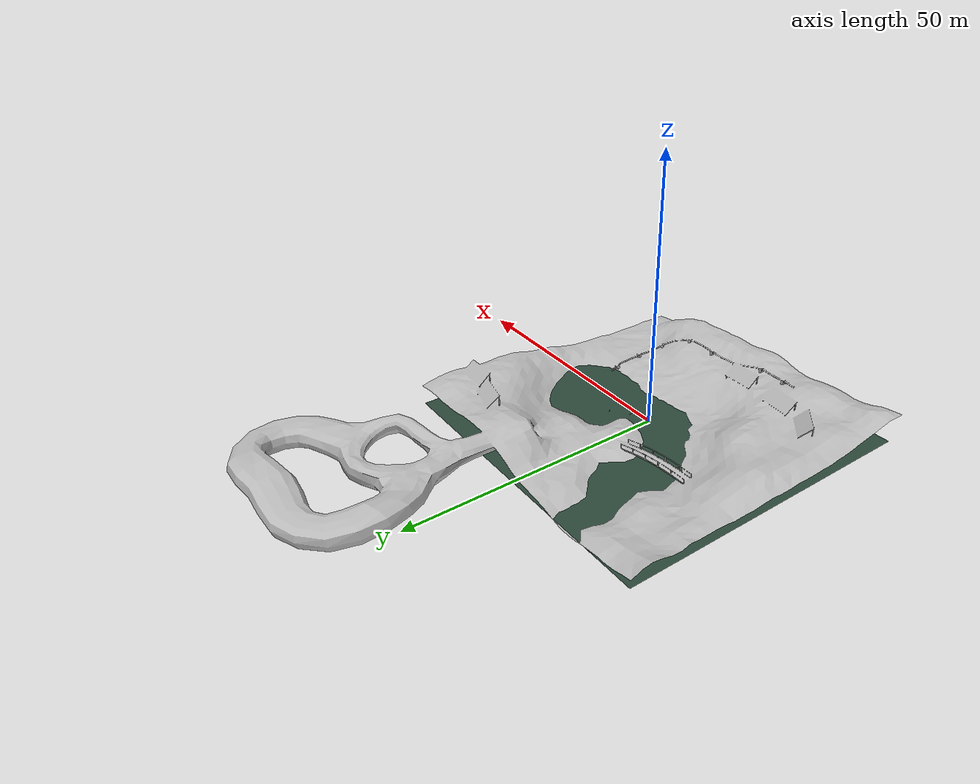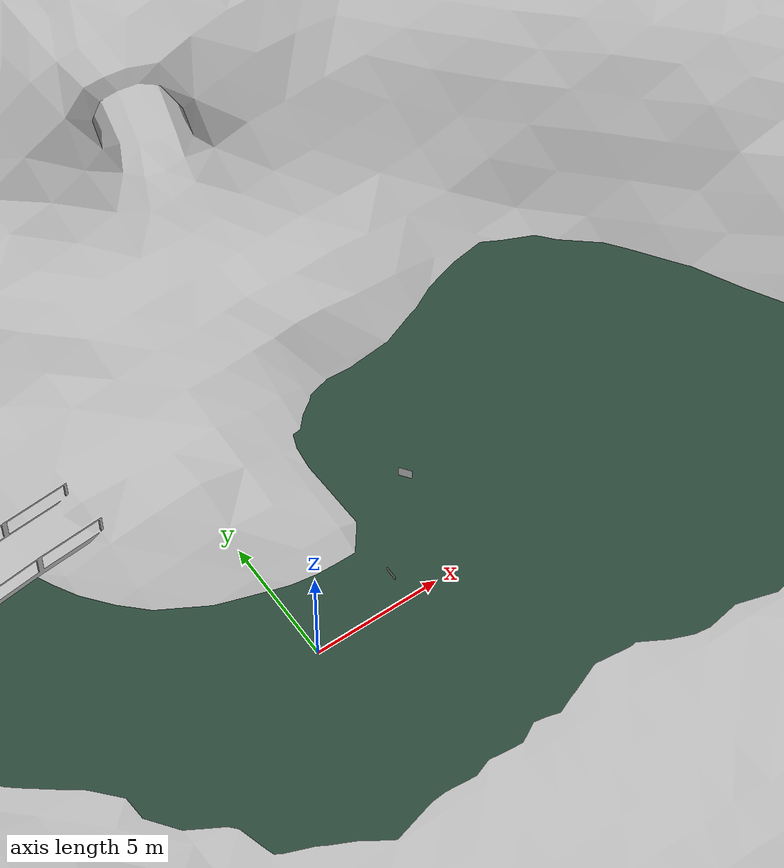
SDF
<sdf version="1.7">
 <world name="default">
  <light name="sun" type="directional">
   <pose>0 0 10 0 -0 0</pose>
   <diffuse>0.8 0.8 0.8 1</diffuse>
   <specular>0.2 0.2 0.2 1</specular>
   <attenuation>
    <range>1000</range>
    <constant>0.9</constant>
    <linear>0.01</linear>
    <quadratic>0.001</quadratic>
   </attenuation>
   <direction>-0.5 0.1 -0.9</direction>
   <spot><inner_angle>0</inner_angle><outer_angle>0</outer_angle><falloff>0</falloff></spot>
  </light>
  <physics name="default_physics" default="0" type="ode">
   <max_step_size>0.001</max_step_size>
   <real_time_factor>1</real_time_factor>
   <real_time_update_rate>1000</real_time_update_rate>
  </physics>
  <scene><ambient>1 1 1 1</ambient><background>1 1 1 1</background><shadows>1</shadows></scene>
  <spherical_coordinates>
   <surface_model>EARTH_WGS84</surface_model>
   <latitude_deg>0</latitude_deg>
   <longitude_deg>0</longitude_deg>
   <elevation>0</elevation>
   <heading_deg>0</heading_deg>
  </spherical_coordinates>
  <gravity>0 0 -9.8</gravity>
  <magnetic_field>6e-06 2.3e-05 -4.2e-05</magnetic_field>
  <atmosphere type="adiabatic"/>
  <audio><device>default</device></audio>
  <model name="inspection_water_geom">
   <link name="inspection_water_link">
    <inertial>
     <mass>1</mass>
     <inertia><ixx>1</ixx><ixy>0</ixy><ixz>0</ixz><iyy>1</iyy><iyz>0</iyz><izz>1</izz></inertia>
    </inertial>
    <visual name="inspection_water_link_visual">
     <geometry>
      <mesh><scale>1 1 1</scale><uri>../models/cpr_inspection/meshes/inspection_water.dae</uri></mesh>
     </geometry>
    </visual>
   </link>
   <static>1</static>
   <pose>0.053227 0.002117 0 0 -0 0</pose>
  </model>
  <model name="inspection_geom">
   <link name="inspection_world_link">
    <inertial>
     <mass>1</mass>
     <inertia><ixx>1</ixx><ixy>0</ixy><ixz>0</ixz><iyy>1</iyy><iyz>0</iyz><izz>1</izz></inertia>
    </inertial>
    <collision name="inspection_world_link_collision">
     <geometry>
      <mesh><scale>1 1 1</scale><uri>../models/cpr_inspection/meshes/inspection_world.dae</uri></mesh>
     </geometry>
    </collision>
    <visual name="inspection_world_link_visual">
     <geometry>
      <mesh><scale>1 1 1</scale><uri>../models/cpr_inspection/meshes/inspection_world.dae</uri></mesh>
     </geometry>
    </visual>
   </link>
   <static>1</static>
  </model>
  <model name="Marker1">
   <static>1</static>
   <link name="link">
    <visual name="visual">
     <geometry><mesh><uri>model://marker1/meshes/Marker1.dae</uri><scale>1 1 1</scale></mesh></geometry>
    </visual>
   </link>
   <pose>3.86033 1.11377 -0.295279 0 -0 0</pose>
  </model>
  <model name="Marker2">
   <static>1</static>
   <link name="link">
    <visual name="visual">
     <geometry><mesh><uri>model://marker2/meshes/Marker2.dae</uri><scale>1 1 1</scale></mesh></geometry>
    </visual>
   </link>
   <pose>6.53229 4.04646 0.264414 0 -0 0.640228</pose>
  </model>
  <model name="Marker3">
   <static>1</static>
   <link name="link">
    <visual name="visual">
     <geometry><mesh><uri>model://marker3/meshes/Marker3.dae</uri><scale>1 1 1</scale></mesh></geometry>
    </visual>
   </link>
   <pose>13.4276 5.19979 -0.59814 0 -0 0</pose>
  </model>
 </world>
</sdf>
